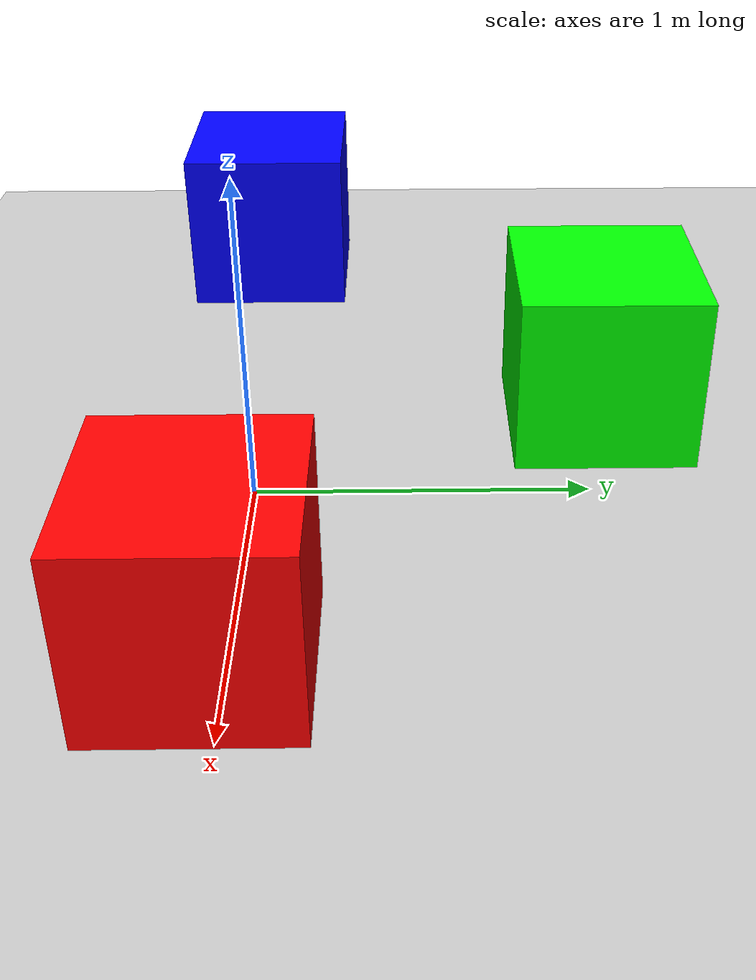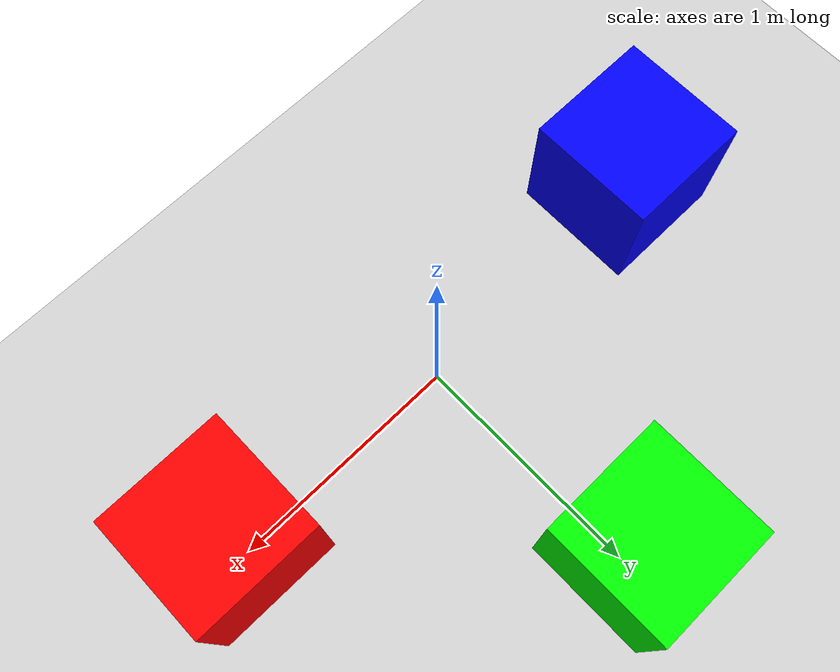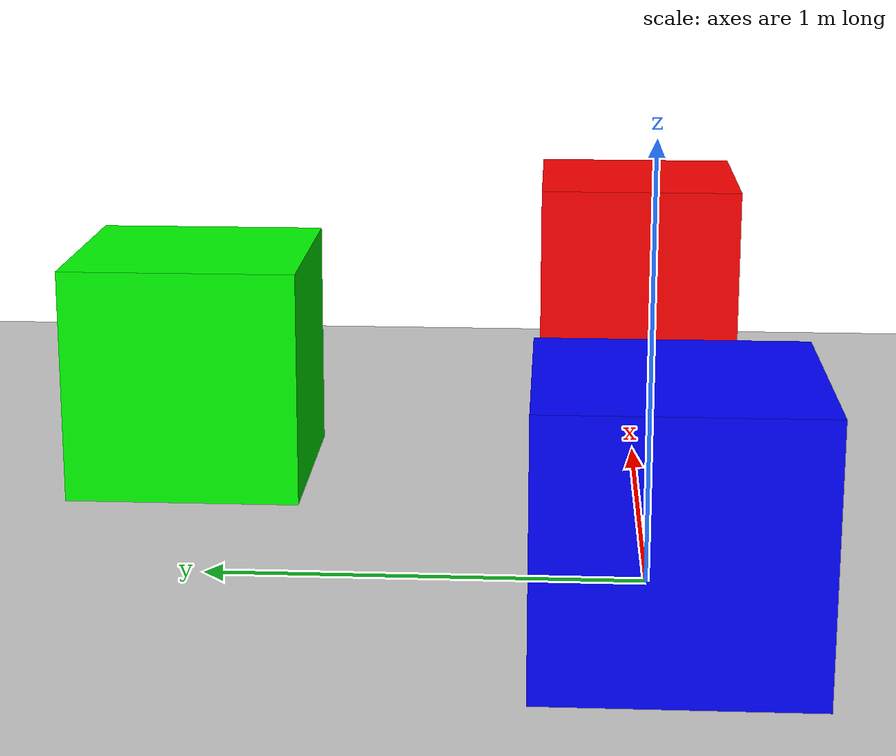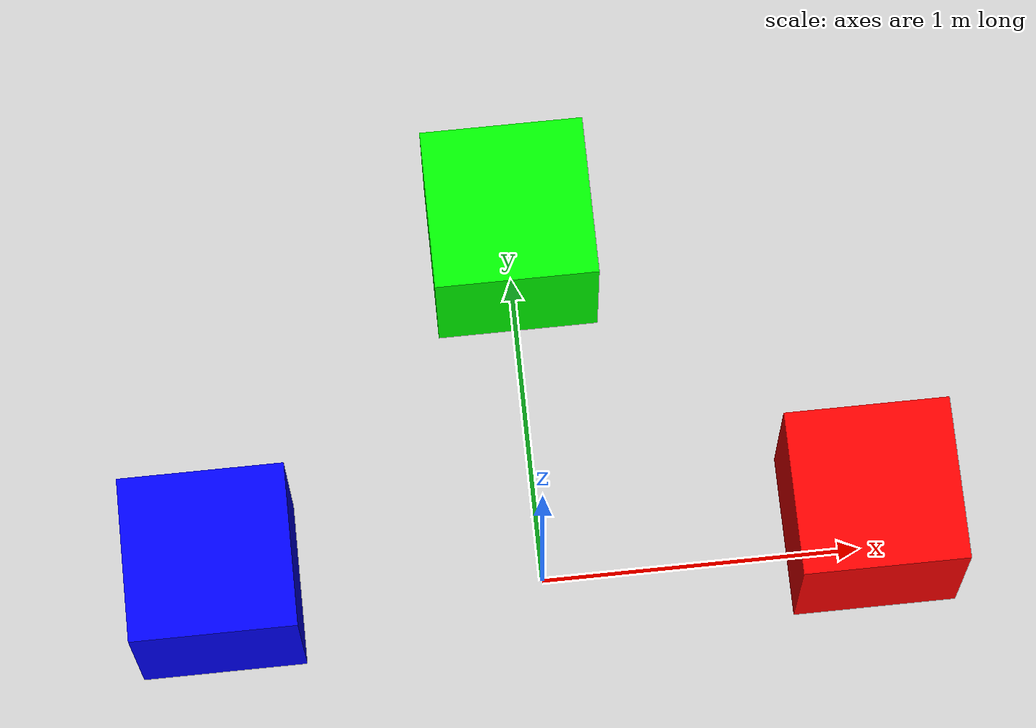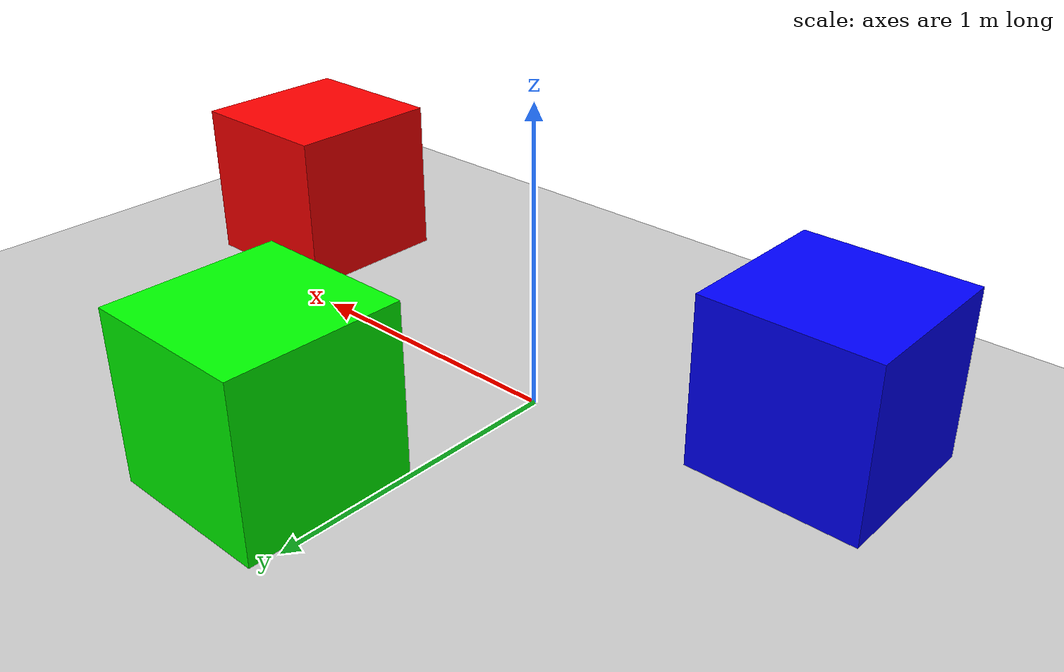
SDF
<?xml version="1.0" ?>
<sdf version="1.6">
  <world name="ros2_test_world">
    <!-- 地面 -->
    <include>
      <uri>model://ground_plane</uri>
    </include>

    <!-- 太阳光 -->
    <include>
      <uri>model://sun</uri>
    </include>

    <!-- 红色方块 -->
    <model name="red_box">
      <pose>1 0 0.5 0 0 0</pose>
      <link name="link">
        <visual name="visual">
          <geometry>
            <box>
              <size>0.5 0.5 0.5</size>
            </box>
          </geometry>
          <material>
            <ambient>1 0 0 1</ambient>
            <diffuse>1 0 0 1</diffuse>
          </material>
        </visual>
        <collision name="collision">
          <geometry>
            <box>
              <size>0.5 0.5 0.5</size>
            </box>
          </geometry>
        </collision>
        <inertial>
          <mass>1.0</mass>
        </inertial>
      </link>
    </model>

    <!-- 绿色方块 -->
    <model name="green_box">
      <pose>0 1 0.5 0 0 0</pose>
      <link name="link">
        <visual name="visual">
          <geometry>
            <box>
              <size>0.5 0.5 0.5</size>
            </box>
          </geometry>
          <material>
            <ambient>0 1 0 1</ambient>
            <diffuse>0 1 0 1</diffuse>
          </material>
        </visual>
        <collision name="collision">
          <geometry>
            <box>
              <size>0.5 0.5 0.5</size>
            </box>
          </geometry>
        </collision>
        <inertial>
          <mass>1.0</mass>
        </inertial>
      </link>
    </model>

    <!-- 蓝色方块 -->
    <model name="blue_box">
      <pose>-1 0 0.5 0 0 0</pose>
      <link name="link">
        <visual name="visual">
          <geometry>
            <box>
              <size>0.5 0.5 0.5</size>
            </box>
          </geometry>
          <material>
            <ambient>0 0 1 1</ambient>
            <diffuse>0 0 1 1</diffuse>
          </material>
        </visual>
        <collision name="collision">
          <geometry>
            <box>
              <size>0.5 0.5 0.5</size>
            </box>
          </geometry>
        </collision>
        <inertial>
          <mass>1.0</mass>
        </inertial>
      </link>
    </model>

    <!-- 摄像机 -->
    <sensor name="camera_sensor" type="camera">
      <pose>0 0 1.5 0 -0.5 0</pose> <!-- 斜视 -->
      <camera>
        <horizontal_fov>1.047</horizontal_fov>
        <image>
          <width>640</width>
          <height>480</height>
          <format>R8G8B8</format>
        </image>
        <clip>
          <near>0.1</near>
          <far>100</far>
        </clip>
      </camera>
      <plugin name="camera_controller" filename="libgazebo_ros_camera.so">
        <ros>
          <namespace>/camera</namespace>
          <remapping>image_raw:=/camera/image_raw</remapping>
        </ros>
      </plugin>
    </sensor>

  </world>
</sdf>
